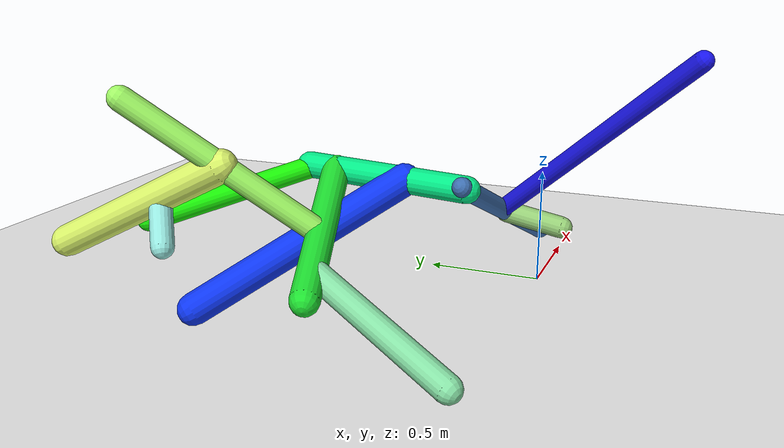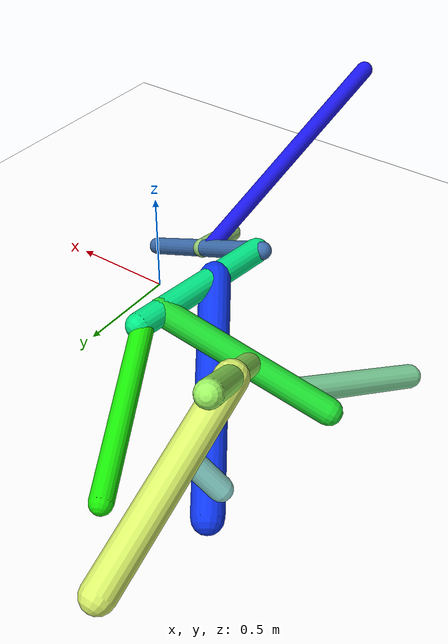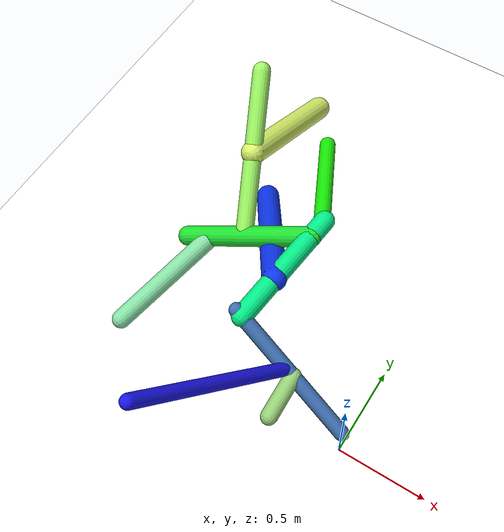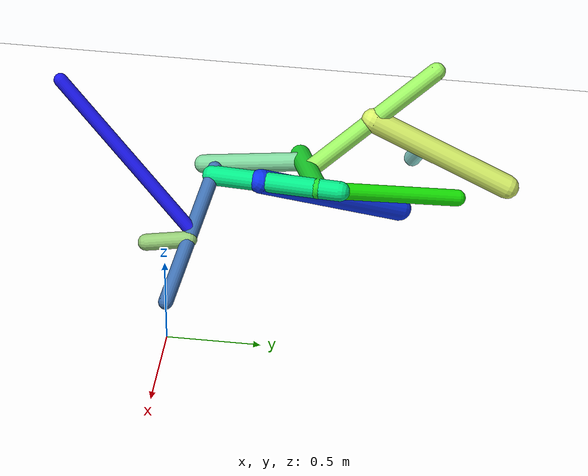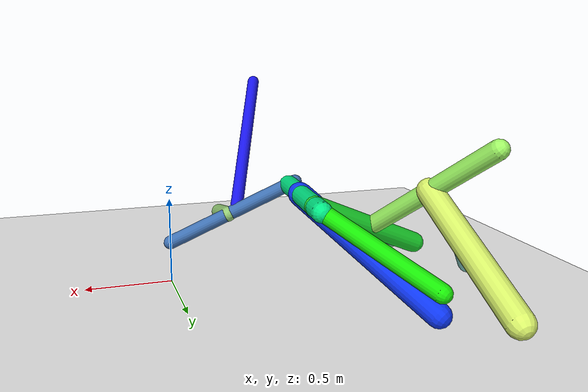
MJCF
<mujoco model="morphology">
  <option timestep="0.01"/>
  <default>
    <default class="/"/>
    <default class="0/"/>
    <default class="0/1/"/>
    <default class="0/2/"/>
    <default class="0/3/"/>
    <default class="0/3/4/"/>
    <default class="0/3/5/"/>
    <default class="0/3/6/"/>
    <default class="0/3/6/7/"/>
    <default class="0/3/6/8/"/>
    <default class="0/3/6/8/9/"/>
    <default class="0/3/6/8/9/10/"/>
  </default>
  <asset>
    <texture name="texplane" type="2d" builtin="checker" rgb1="0.10000000000000001 0.20000000000000001 0.29999999999999999" rgb2="0.20000000000000001 0.29999999999999999 0.40000000000000002" width="300" height="300"/>
    <material name="MatPlane" class="/" texture="texplane" texrepeat="20 20" specular="1" shininess="1" reflectance="0.5"/>
  </asset>
  <worldbody>
    <light name="//unnamed_light_0" class="/" directional="true" pos="0 0 1.5" dir="0 0 -1.3" cutoff="100" exponent="1" diffuse="1 1 1" specular="0.10000000000000001 0.10000000000000001 0.10000000000000001"/>
    <geom name="ground" class="/" type="plane" size="15 15 0.5" material="MatPlane" rgba="1 1 1 1"/>
    <site name="body" class="/" size="9.9999999999999995e-07 9.9999999999999995e-07 9.9999999999999995e-07" pos="0 0 0.23915765285491944"/>
    <body pos="0 0 0.23915765285491944" name="0/">
      <freejoint name="0/"/>
      <geom name="0/geom" class="0/" type="capsule" contype="1" conaffinity="1" condim="3" size="0.039619736663264599" rgba="0.24208346741536513 0.43391941027637426 0.68650041563967779 1" friction="0.59999999999999998 0.10000000000000001 0.10000000000000001" fromto="0 0 0 -0.71264090197630803 0.15406751239589012 0.35211319610533121"/>
      <site name="0/end0" class="0/" size="0.0050000000000000001" pos="-0.71264090197630803 0.15406751239589012 0.35211319610533121"/>
      <site name="0/attach1" class="0/" size="9.9999999999999995e-07 9.9999999999999995e-07 9.9999999999999995e-07" pos="-0.37602938977031702 0.0812946780194541 0.18579471076439211"/>
      <body pos="-0.37602938977031702 0.0812946780194541 0.18579471076439211" name="0/1/">
        <joint name="0/1/joint/" class="0/" type="hinge" axis="0 1 0" limited="true" range="-45.298187995421436 45.298187995421436"/>
        <geom name="0/1/geom" class="0/1/" type="capsule" contype="1" conaffinity="1" condim="3" size="0.03653899492004755" rgba="0.10021762851582272 0.084596675125512721 0.91227445592820133 1" friction="0.59999999999999998 0.10000000000000001 0.10000000000000001" fromto="0 0 0 -0.32326912632787752 -0.73932286985814311 0.68007126757771141"/>
        <site name="0/1/end1" class="0/1/" size="0.0050000000000000001" pos="-0.32326912632787752 -0.73932286985814311 0.68007126757771141"/>
      </body>
      <site name="0/attach2" class="0/" size="9.9999999999999995e-07 9.9999999999999995e-07 9.9999999999999995e-07" pos="-0.33171869394162395 0.071715044490245516 0.16390096219253286"/>
      <body pos="-0.33171869394162395 0.071715044490245516 0.16390096219253286" name="0/2/">
        <geom name="0/2/geom" class="0/2/" type="capsule" contype="1" conaffinity="1" condim="3" size="0.04440110015994933" rgba="0.57773439153429507 0.79306951173397167 0.4573401746939062 1" friction="0.59999999999999998 0.10000000000000001 0.10000000000000001" fromto="0 0 0 0.0023802253227130921 -0.22834834158307138 -0.042581394493607316"/>
        <site name="0/2/end2" class="0/2/" size="0.0050000000000000001" pos="0.0023802253227130921 -0.22834834158307138 -0.042581394493607316"/>
      </body>
      <site name="0/attach3" class="0/" size="9.9999999999999995e-07 9.9999999999999995e-07 9.9999999999999995e-07" pos="-0.6775223360773529 0.146475147051776 0.33476124444633437"/>
      <body pos="-0.6775223360773529 0.146475147051776 0.33476124444633437" name="0/3/">
        <joint name="0/3/joint/" class="0/" type="hinge" axis="0 0 1" limited="true" range="-57.082637420466511 57.082637420466511"/>
        <geom name="0/3/geom" class="0/3/" type="capsule" contype="1" conaffinity="1" condim="3" size="0.054062898083695313" rgba="0.0046756222357213773 0.9092296023205565 0.52535056760236176 1" friction="0.59999999999999998 0.10000000000000001 0.10000000000000001" fromto="0 0 0 0.069695781672144297 0.69222587027192306 0.019601162979358211"/>
        <site name="0/3/end3" class="0/3/" size="0.0050000000000000001" pos="0.069695781672144297 0.69222587027192306 0.019601162979358211"/>
        <site name="0/3/attach4" class="0/3/" size="9.9999999999999995e-07 9.9999999999999995e-07 9.9999999999999995e-07" pos="0.026463806708964057 0.26284132540466548 0.0074426511319831854"/>
        <body pos="0.026463806708964057 0.26284132540466548 0.0074426511319831854" name="0/3/4/">
          <joint name="0/3/4/joint/" class="0/3/" type="hinge" axis="-3.4694469519536142e-18 -0.028304792411233688 0.99959933909869969" limited="true" range="-39.808845335469677 39.808845335469677"/>
          <geom name="0/3/4/geom" class="0/3/4/" type="capsule" contype="1" conaffinity="1" condim="3" size="0.065468996782361344" rgba="0.051133923246424073 0.21145618036507152 0.9362376114223756 1" friction="0.59999999999999998 0.10000000000000001 0.10000000000000001" fromto="0 0 0 -0.47131344215199406 0.69563825283006864 -0.47974521490785577"/>
          <site name="0/3/4/end4" class="0/3/4/" size="0.0050000000000000001" pos="-0.47131344215199406 0.69563825283006864 -0.47974521490785577"/>
        </body>
        <site name="0/3/attach5" class="0/3/" size="9.9999999999999995e-07 9.9999999999999995e-07 9.9999999999999995e-07" pos="0.067208602667448242 0.66752294550745483 0.018901671563088317"/>
        <body pos="0.067208602667448242 0.66752294550745483 0.018901671563088317" name="0/3/5/">
          <joint name="0/3/5/joint/" class="0/3/" type="hinge" axis="-3.4694469519536142e-18 -0.028304792411233688 0.99959933909869969" limited="true" range="-61.66320352468734 61.66320352468734"/>
          <geom name="0/3/5/geom" class="0/3/5/" type="capsule" contype="1" conaffinity="1" condim="3" size="0.045316077887134584" rgba="0.094605212833716368 0.91959487127299988 0.023313683891740378 1" friction="0.59999999999999998 0.10000000000000001 0.10000000000000001" fromto="0 0 0 -0.31214863428238093 0.62177929504416762 -0.2239956036140538"/>
          <site name="0/3/5/end5" class="0/3/5/" size="0.0050000000000000001" pos="-0.31214863428238093 0.62177929504416762 -0.2239956036140538"/>
        </body>
        <site name="0/3/attach6" class="0/3/" size="9.9999999999999995e-07 9.9999999999999995e-07 9.9999999999999995e-07" pos="0.057417760160620925 0.57027926285725128 0.016148106066336702"/>
        <body pos="0.057417760160620925 0.57027926285725128 0.016148106066336702" name="0/3/6/">
          <joint name="0/3/6/joint/" class="0/3/" type="hinge" axis="-0.99497362101109443 0.1000972519733474 0.0028343675583010729" limited="true" range="-31.055244108872557 31.055244108872557"/>
          <geom name="0/3/6/geom" class="0/3/6/" type="capsule" contype="1" conaffinity="1" condim="3" size="0.05626343213316895" rgba="0.11732200752491895 0.87055747683091056 0.18892537834034395 1" friction="0.59999999999999998 0.10000000000000001 0.10000000000000001" fromto="0 0 0 -0.66790152962626115 -0.17995660781306411 -0.30446292714300283"/>
          <site name="0/3/6/end6" class="0/3/6/" size="0.0050000000000000001" pos="-0.66790152962626115 -0.17995660781306411 -0.30446292714300283"/>
          <site name="0/3/6/attach7" class="0/3/6/" size="9.9999999999999995e-07 9.9999999999999995e-07 9.9999999999999995e-07" pos="-0.53134731418785586 -0.14316400845096863 -0.24221468499665275"/>
          <body pos="-0.53134731418785586 -0.14316400845096863 -0.24221468499665275" name="0/3/6/7/">
            <joint name="0/3/6/7/joint/" class="0/3/6/" type="hinge" axis="0 -0.86086869467516403 0.50882717157034751" limited="true" range="-61.204106851056963 61.204106851056963"/>
            <geom name="0/3/6/7/geom" class="0/3/6/7/" type="capsule" contype="1" conaffinity="1" condim="3" size="0.051887822251675077" rgba="0.51807842275588323 0.8673364158788146 0.63677246348412919 1" friction="0.59999999999999998 0.10000000000000001 0.10000000000000001" fromto="0 0 0 -0.22149723156880219 -0.58970514445915867 -0.2478523192257307"/>
            <site name="0/3/6/7/end7" class="0/3/6/7/" size="0.0050000000000000001" pos="-0.22149723156880219 -0.58970514445915867 -0.2478523192257307"/>
          </body>
          <site name="0/3/6/attach8" class="0/3/6/" size="9.9999999999999995e-07 9.9999999999999995e-07 9.9999999999999995e-07" pos="-0.35233811785578723 -0.094932515767776476 -0.16061333886517185"/>
          <body pos="-0.35233811785578723 -0.094932515767776476 -0.16061333886517185" name="0/3/6/8/">
            <joint name="0/3/6/8/joint/" class="0/3/6/" type="hinge" axis="0.4679647011519853 -0.44967456655893329 -0.76079026194199484" limited="true" range="-67.850585679730045 67.850585679730045"/>
            <geom name="0/3/6/8/geom" class="0/3/6/8/" type="capsule" contype="1" conaffinity="1" condim="3" size="0.048743711615760139" rgba="0.62006229841355298 0.96623007627969648 0.38958852956685852 1" friction="0.59999999999999998 0.10000000000000001 0.10000000000000001" fromto="0 0 0 -0.29409194698207508 0.651436360467744 0.51407030955861832"/>
            <site name="0/3/6/8/end8" class="0/3/6/8/" size="0.0050000000000000001" pos="-0.29409194698207508 0.651436360467744 0.51407030955861832"/>
            <site name="0/3/6/8/attach9" class="0/3/6/8/" size="9.9999999999999995e-07 9.9999999999999995e-07 9.9999999999999995e-07" pos="-0.14980525407312867 0.33183019968340938 0.26185835458994905"/>
            <body pos="-0.14980525407312867 0.33183019968340938 0.26185835458994905" name="0/3/6/8/9/">
              <joint name="0/3/6/8/9/joint/" class="0/3/6/8/" type="hinge" axis="0 -0.61947980230189292 0.78501259514736965" limited="true" range="-39.042540020301217 39.042540020301217"/>
              <geom name="0/3/6/8/9/geom" class="0/3/6/8/9/" type="capsule" contype="1" conaffinity="1" condim="3" size="0.065011088277016627" rgba="0.84738052001250874 0.94926672044889338 0.41193580481657144 1" friction="0.59999999999999998 0.10000000000000001 0.10000000000000001" fromto="0 0 0 -0.0055438716140240318 0.73404944463344313 -0.37909809703232661"/>
              <site name="0/3/6/8/9/end9" class="0/3/6/8/9/" size="0.0050000000000000001" pos="-0.0055438716140240318 0.73404944463344313 -0.37909809703232661"/>
              <site name="0/3/6/8/9/attach10" class="0/3/6/8/9/" size="9.9999999999999995e-07 9.9999999999999995e-07 9.9999999999999995e-07" pos="-0.0020732441981246917 0.27451280588337612 -0.14177148839525336"/>
              <body pos="-0.0020732441981246917 0.27451280588337612 -0.14177148839525336" name="0/3/6/8/9/10/">
                <joint name="0/3/6/8/9/10/joint/" class="0/3/6/8/9/" type="hinge" axis="-2.7755575615628914e-17 0.45886643610074773 0.88850525818376469" limited="true" range="-64.95736661483275 64.95736661483275"/>
                <geom name="0/3/6/8/9/10/geom" class="0/3/6/8/9/10/" type="capsule" contype="1" conaffinity="1" condim="3" size="0.045483494088338516" rgba="0.5820140026522983 0.89450805842896652 0.8629272465289487 1" friction="0.59999999999999998 0.10000000000000001 0.10000000000000001" fromto="0 0 0 -0.09934204396623536 -0.068316397768251047 -0.16779380579576864"/>
                <site name="0/3/6/8/9/10/end10" class="0/3/6/8/9/10/" size="0.0050000000000000001" pos="-0.09934204396623536 -0.068316397768251047 -0.16779380579576864"/>
              </body>
            </body>
          </body>
        </body>
      </body>
      <camera name="0/iso" class="0/" mode="trackcom" pos="-2.2999999999999998 -2.2999999999999998 1" xyaxes="0.45000000000000001 -0.45000000000000001 0 0.29999999999999999 0.14999999999999999 0.93999999999999995"/>
    </body>
  </worldbody>
  <actuator>
    <motor name="0/1/motor" class="0/1/" ctrllimited="true" ctrlrange="-1 1" gear="52" joint="0/1/joint/"/>
    <motor name="0/3/motor" class="0/3/" ctrllimited="true" ctrlrange="-1 1" gear="98" joint="0/3/joint/"/>
    <motor name="0/3/4/motor" class="0/3/4/" ctrllimited="true" ctrlrange="-1 1" gear="78" joint="0/3/4/joint/"/>
    <motor name="0/3/5/motor" class="0/3/5/" ctrllimited="true" ctrlrange="-1 1" gear="65" joint="0/3/5/joint/"/>
    <motor name="0/3/6/motor" class="0/3/6/" ctrllimited="true" ctrlrange="-1 1" gear="63" joint="0/3/6/joint/"/>
    <motor name="0/3/6/7/motor" class="0/3/6/7/" ctrllimited="true" ctrlrange="-1 1" gear="71" joint="0/3/6/7/joint/"/>
    <motor name="0/3/6/8/motor" class="0/3/6/8/" ctrllimited="true" ctrlrange="-1 1" gear="50" joint="0/3/6/8/joint/"/>
    <motor name="0/3/6/8/9/motor" class="0/3/6/8/9/" ctrllimited="true" ctrlrange="-1 1" gear="89" joint="0/3/6/8/9/joint/"/>
    <motor name="0/3/6/8/9/10/motor" class="0/3/6/8/9/10/" ctrllimited="true" ctrlrange="-1 1" gear="87" joint="0/3/6/8/9/10/joint/"/>
  </actuator>
  <sensor>
    <subtreelinvel name="velocity" body="0/"/>
  </sensor>
</mujoco>
